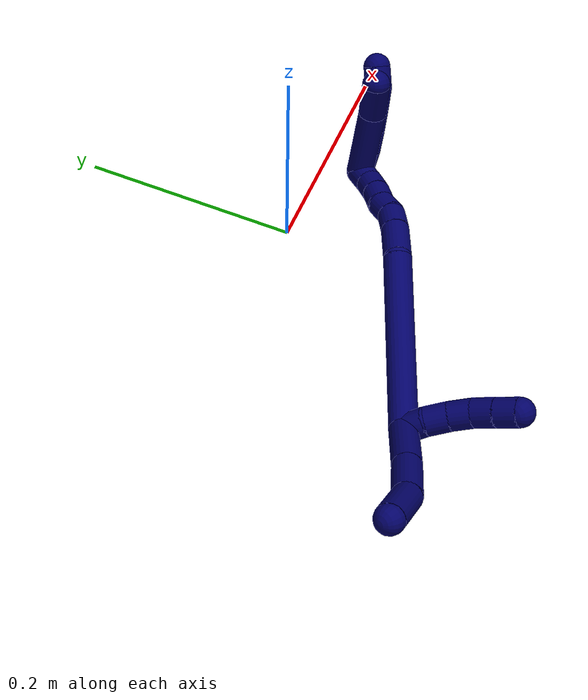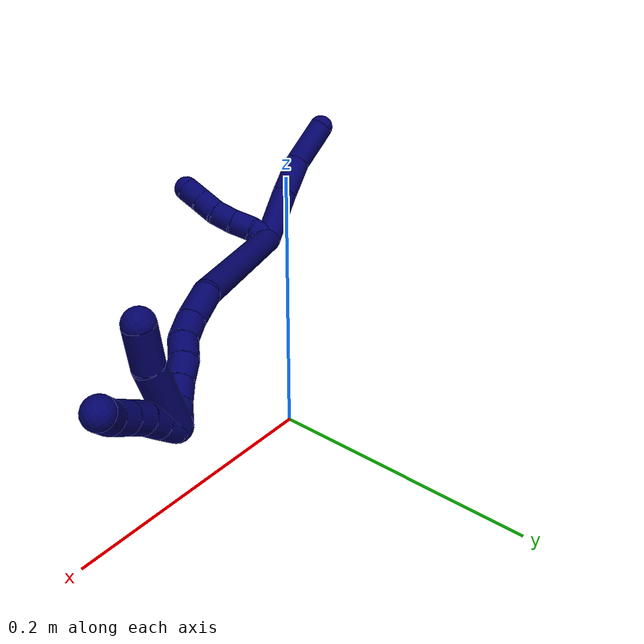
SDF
<sdf version="1.7">
 <world name="default">
  <model name="7">
   <static>0</static>
   <link name="7">
    <collision name="collision-cylinder-e_1_2_8">
     <pose>0.001092 -0.019151 0.021248 0.733532 0.038148 0.014656</pose>
     <geometry><cylinder><radius>0.0125</radius><length>0.057252</length></cylinder></geometry>
     <surface>
      <friction><ode><mu>1.16</mu><mu2>1.16</mu2><slip1>0</slip1><slip2>0</slip2></ode></friction>
      <contact><ode><kp>1e+06</kp><kd>1</kd><max_vel>0</max_vel><min_depth>0.001</min_depth></ode></contact>
     </surface>
    </collision>
    <visual name="visual-cylinder-e_1_2_8">
     <pose>0.001092 -0.019151 0.021248 0.733532 0.038148 0.014656</pose>
     <geometry><cylinder><radius>0.0125</radius><length>0.057252</length></cylinder></geometry>
     <material><ambient>0.003922 0 0.403922 1</ambient></material>
    </visual>
    <collision name="collision-cylinder-e_2_8_9">
     <pose>0.003145 -0.052416 0.059653 0.688415 0.043256 0.015509</pose>
     <geometry><cylinder><radius>0.0125</radius><length>0.044473</length></cylinder></geometry>
     <surface>
      <friction><ode><mu>1.16</mu><mu2>1.16</mu2><slip1>0</slip1><slip2>0</slip2></ode></friction>
      <contact><ode><kp>1e+06</kp><kd>1</kd><max_vel>0</max_vel><min_depth>0.001</min_depth></ode></contact>
     </surface>
    </collision>
    <visual name="visual-cylinder-e_2_8_9">
     <pose>0.003145 -0.052416 0.059653 0.688415 0.043256 0.015509</pose>
     <geometry><cylinder><radius>0.0125</radius><length>0.044473</length></cylinder></geometry>
     <material><ambient>0.003922 0 0.403922 1</ambient></material>
    </visual>
    <collision name="collision-cylinder-e_3_9_6">
     <pose>0.008894 -0.075526 0.09869 0.390055 0.199674 0.03957</pose>
     <geometry><cylinder><radius>0.0125</radius><length>0.048275</length></cylinder></geometry>
     <surface>
      <friction><ode><mu>1.16</mu><mu2>1.16</mu2><slip1>0</slip1><slip2>0</slip2></ode></friction>
      <contact><ode><kp>1e+06</kp><kd>1</kd><max_vel>0</max_vel><min_depth>0.001</min_depth></ode></contact>
     </surface>
    </collision>
    <visual name="visual-cylinder-e_3_9_6">
     <pose>0.008894 -0.075526 0.09869 0.390055 0.199674 0.03957</pose>
     <geometry><cylinder><radius>0.0125</radius><length>0.048275</length></cylinder></geometry>
     <material><ambient>0.003922 0 0.403922 1</ambient></material>
    </visual>
    <collision name="collision-cylinder-e_1_2_10">
     <pose>0.005407 -0.007226 -0.004307 2.10836 0.571295 0.954262</pose>
     <geometry><cylinder><radius>0.0125</radius><length>0.02</length></cylinder></geometry>
     <surface>
      <friction><ode><mu>1.16</mu><mu2>1.16</mu2><slip1>0</slip1><slip2>0</slip2></ode></friction>
      <contact><ode><kp>1e+06</kp><kd>1</kd><max_vel>0</max_vel><min_depth>0.001</min_depth></ode></contact>
     </surface>
    </collision>
    <visual name="visual-cylinder-e_1_2_10">
     <pose>0.005407 -0.007226 -0.004307 2.10836 0.571295 0.954262</pose>
     <geometry><cylinder><radius>0.0125</radius><length>0.02</length></cylinder></geometry>
     <material><ambient>0.003922 0 0.403922 1</ambient></material>
    </visual>
    <collision name="collision-cylinder-e_2_10_11">
     <pose>0.014604 -0.021692 -0.014378 2.2431 0.388665 0.775151</pose>
     <geometry><cylinder><radius>0.0125</radius><length>0.02</length></cylinder></geometry>
     <surface>
      <friction><ode><mu>1.16</mu><mu2>1.16</mu2><slip1>0</slip1><slip2>0</slip2></ode></friction>
      <contact><ode><kp>1e+06</kp><kd>1</kd><max_vel>0</max_vel><min_depth>0.001</min_depth></ode></contact>
     </surface>
    </collision>
    <visual name="visual-cylinder-e_2_10_11">
     <pose>0.014604 -0.021692 -0.014378 2.2431 0.388665 0.775151</pose>
     <geometry><cylinder><radius>0.0125</radius><length>0.02</length></cylinder></geometry>
     <material><ambient>0.003922 0 0.403922 1</ambient></material>
    </visual>
    <collision name="collision-cylinder-e_3_11_12">
     <pose>0.022109 -0.036965 -0.024796 2.09592 0.380633 0.64518</pose>
     <geometry><cylinder><radius>0.0125</radius><length>0.02</length></cylinder></geometry>
     <surface>
      <friction><ode><mu>1.16</mu><mu2>1.16</mu2><slip1>0</slip1><slip2>0</slip2></ode></friction>
      <contact><ode><kp>1e+06</kp><kd>1</kd><max_vel>0</max_vel><min_depth>0.001</min_depth></ode></contact>
     </surface>
    </collision>
    <visual name="visual-cylinder-e_3_11_12">
     <pose>0.022109 -0.036965 -0.024796 2.09592 0.380633 0.64518</pose>
     <geometry><cylinder><radius>0.0125</radius><length>0.02</length></cylinder></geometry>
     <material><ambient>0.003922 0 0.403922 1</ambient></material>
    </visual>
    <collision name="collision-cylinder-e_4_12_13">
     <pose>0.029396 -0.053956 -0.032095 1.85789 0.365294 0.484538</pose>
     <geometry><cylinder><radius>0.0125</radius><length>0.02</length></cylinder></geometry>
     <surface>
      <friction><ode><mu>1.16</mu><mu2>1.16</mu2><slip1>0</slip1><slip2>0</slip2></ode></friction>
      <contact><ode><kp>1e+06</kp><kd>1</kd><max_vel>0</max_vel><min_depth>0.001</min_depth></ode></contact>
     </surface>
    </collision>
    <visual name="visual-cylinder-e_4_12_13">
     <pose>0.029396 -0.053956 -0.032095 1.85789 0.365294 0.484538</pose>
     <geometry><cylinder><radius>0.0125</radius><length>0.02</length></cylinder></geometry>
     <material><ambient>0.003922 0 0.403922 1</ambient></material>
    </visual>
    <collision name="collision-cylinder-e_5_13_5">
     <pose>0.036395 -0.071913 -0.03744 1.86227 0.349807 0.466372</pose>
     <geometry><cylinder><radius>0.0125</radius><length>0.02</length></cylinder></geometry>
     <surface>
      <friction><ode><mu>1.16</mu><mu2>1.16</mu2><slip1>0</slip1><slip2>0</slip2></ode></friction>
      <contact><ode><kp>1e+06</kp><kd>1</kd><max_vel>0</max_vel><min_depth>0.001</min_depth></ode></contact>
     </surface>
    </collision>
    <visual name="visual-cylinder-e_5_13_5">
     <pose>0.036395 -0.071913 -0.03744 1.86227 0.349807 0.466372</pose>
     <geometry><cylinder><radius>0.0125</radius><length>0.02</length></cylinder></geometry>
     <material><ambient>0.003922 0 0.403922 1</ambient></material>
    </visual>
    <collision name="collision-cylinder-e_1_2_14">
     <pose>0.046096 0.047539 -0.044796 -2.3265 0.614536 -1.26768</pose>
     <geometry><cylinder><radius>0.0125</radius><length>0.159893</length></cylinder></geometry>
     <surface>
      <friction><ode><mu>1.16</mu><mu2>1.16</mu2><slip1>0</slip1><slip2>0</slip2></ode></friction>
      <contact><ode><kp>1e+06</kp><kd>1</kd><max_vel>0</max_vel><min_depth>0.001</min_depth></ode></contact>
     </surface>
    </collision>
    <visual name="visual-cylinder-e_1_2_14">
     <pose>0.046096 0.047539 -0.044796 -2.3265 0.614536 -1.26768</pose>
     <geometry><cylinder><radius>0.0125</radius><length>0.159893</length></cylinder></geometry>
     <material><ambient>0.003922 0 0.403922 1</ambient></material>
    </visual>
    <collision name="collision-cylinder-e_2_14_15">
     <pose>0.09744 0.107338 -0.101651 -2.34797 0.296254 -0.684197</pose>
     <geometry><cylinder><radius>0.0125</radius><length>0.03596</length></cylinder></geometry>
     <surface>
      <friction><ode><mu>1.16</mu><mu2>1.16</mu2><slip1>0</slip1><slip2>0</slip2></ode></friction>
      <contact><ode><kp>1e+06</kp><kd>1</kd><max_vel>0</max_vel><min_depth>0.001</min_depth></ode></contact>
     </surface>
    </collision>
    <visual name="visual-cylinder-e_2_14_15">
     <pose>0.09744 0.107338 -0.101651 -2.34797 0.296254 -0.684197</pose>
     <geometry><cylinder><radius>0.0125</radius><length>0.03596</length></cylinder></geometry>
     <material><ambient>0.003922 0 0.403922 1</ambient></material>
    </visual>
    <collision name="collision-cylinder-e_3_15_16">
     <pose>0.105254 0.128055 -0.120652 -2.25801 0.230263 -0.479597</pose>
     <geometry><cylinder><radius>0.0125</radius><length>0.022478</length></cylinder></geometry>
     <surface>
      <friction><ode><mu>1.16</mu><mu2>1.16</mu2><slip1>0</slip1><slip2>0</slip2></ode></friction>
      <contact><ode><kp>1e+06</kp><kd>1</kd><max_vel>0</max_vel><min_depth>0.001</min_depth></ode></contact>
     </surface>
    </collision>
    <visual name="visual-cylinder-e_3_15_16">
     <pose>0.105254 0.128055 -0.120652 -2.25801 0.230263 -0.479597</pose>
     <geometry><cylinder><radius>0.0125</radius><length>0.022478</length></cylinder></geometry>
     <material><ambient>0.003922 0 0.403922 1</ambient></material>
    </visual>
    <collision name="collision-cylinder-e_4_16_17">
     <pose>0.108485 0.145815 -0.131555 -1.97339 0.065738 -0.0994</pose>
     <geometry><cylinder><radius>0.0125</radius><length>0.020263</length></cylinder></geometry>
     <surface>
      <friction><ode><mu>1.16</mu><mu2>1.16</mu2><slip1>0</slip1><slip2>0</slip2></ode></friction>
      <contact><ode><kp>1e+06</kp><kd>1</kd><max_vel>0</max_vel><min_depth>0.001</min_depth></ode></contact>
     </surface>
    </collision>
    <visual name="visual-cylinder-e_4_16_17">
     <pose>0.108485 0.145815 -0.131555 -1.97339 0.065738 -0.0994</pose>
     <geometry><cylinder><radius>0.0125</radius><length>0.020263</length></cylinder></geometry>
     <material><ambient>0.003922 0 0.403922 1</ambient></material>
    </visual>
    <collision name="collision-cylinder-e_5_17_18">
     <pose>0.110291 0.163428 -0.141533 -2.19738 0.110742 -0.216252</pose>
     <geometry><cylinder><radius>0.0125</radius><length>0.020648</length></cylinder></geometry>
     <surface>
      <friction><ode><mu>1.16</mu><mu2>1.16</mu2><slip1>0</slip1><slip2>0</slip2></ode></friction>
      <contact><ode><kp>1e+06</kp><kd>1</kd><max_vel>0</max_vel><min_depth>0.001</min_depth></ode></contact>
     </surface>
    </collision>
    <visual name="visual-cylinder-e_5_17_18">
     <pose>0.110291 0.163428 -0.141533 -2.19738 0.110742 -0.216252</pose>
     <geometry><cylinder><radius>0.0125</radius><length>0.020648</length></cylinder></geometry>
     <material><ambient>0.003922 0 0.403922 1</ambient></material>
    </visual>
    <collision name="collision-cylinder-e_6_18_19">
     <pose>0.111965 0.18043 -0.152756 -2.11055 0.05258 -0.092748</pose>
     <geometry><cylinder><radius>0.0125</radius><length>0.020289</length></cylinder></geometry>
     <surface>
      <friction><ode><mu>1.16</mu><mu2>1.16</mu2><slip1>0</slip1><slip2>0</slip2></ode></friction>
      <contact><ode><kp>1e+06</kp><kd>1</kd><max_vel>0</max_vel><min_depth>0.001</min_depth></ode></contact>
     </surface>
    </collision>
    <visual name="visual-cylinder-e_6_18_19">
     <pose>0.111965 0.18043 -0.152756 -2.11055 0.05258 -0.092748</pose>
     <geometry><cylinder><radius>0.0125</radius><length>0.020289</length></cylinder></geometry>
     <material><ambient>0.003922 0 0.403922 1</ambient></material>
    </visual>
    <collision name="collision-cylinder-e_7_19_1">
     <pose>0.114013 0.198519 -0.161721 -1.95124 0.148536 -0.218905</pose>
     <geometry><cylinder><radius>0.0125</radius><length>0.02047</length></cylinder></geometry>
     <surface>
      <friction><ode><mu>1.16</mu><mu2>1.16</mu2><slip1>0</slip1><slip2>0</slip2></ode></friction>
      <contact><ode><kp>1e+06</kp><kd>1</kd><max_vel>0</max_vel><min_depth>0.001</min_depth></ode></contact>
     </surface>
    </collision>
    <visual name="visual-cylinder-e_7_19_1">
     <pose>0.114013 0.198519 -0.161721 -1.95124 0.148536 -0.218905</pose>
     <geometry><cylinder><radius>0.0125</radius><length>0.02047</length></cylinder></geometry>
     <material><ambient>0.003922 0 0.403922 1</ambient></material>
    </visual>
    <collision name="collision-cylinder-e_1_1_20">
     <pose>0.124673 0.208493 -0.169485 -2.99878 1.15416 -2.92272</pose>
     <geometry><cylinder><radius>0.0125</radius><length>0.02</length></cylinder></geometry>
     <surface>
      <friction><ode><mu>1.16</mu><mu2>1.16</mu2><slip1>0</slip1><slip2>0</slip2></ode></friction>
      <contact><ode><kp>1e+06</kp><kd>1</kd><max_vel>0</max_vel><min_depth>0.001</min_depth></ode></contact>
     </surface>
    </collision>
    <visual name="visual-cylinder-e_1_1_20">
     <pose>0.124673 0.208493 -0.169485 -2.99878 1.15416 -2.92272</pose>
     <geometry><cylinder><radius>0.0125</radius><length>0.02</length></cylinder></geometry>
     <material><ambient>0.003922 0 0.403922 1</ambient></material>
    </visual>
    <collision name="collision-cylinder-e_2_20_21">
     <pose>0.143195 0.210363 -0.176713 -2.75987 1.21612 -2.60005</pose>
     <geometry><cylinder><radius>0.0125</radius><length>0.02</length></cylinder></geometry>
     <surface>
      <friction><ode><mu>1.16</mu><mu2>1.16</mu2><slip1>0</slip1><slip2>0</slip2></ode></friction>
      <contact><ode><kp>1e+06</kp><kd>1</kd><max_vel>0</max_vel><min_depth>0.001</min_depth></ode></contact>
     </surface>
    </collision>
    <visual name="visual-cylinder-e_2_20_21">
     <pose>0.143195 0.210363 -0.176713 -2.75987 1.21612 -2.60005</pose>
     <geometry><cylinder><radius>0.0125</radius><length>0.02</length></cylinder></geometry>
     <material><ambient>0.003922 0 0.403922 1</ambient></material>
    </visual>
    <collision name="collision-cylinder-e_3_21_22">
     <pose>0.161369 0.214103 -0.184015 -2.60126 1.07509 -2.27177</pose>
     <geometry><cylinder><radius>0.0125</radius><length>0.02</length></cylinder></geometry>
     <surface>
      <friction><ode><mu>1.16</mu><mu2>1.16</mu2><slip1>0</slip1><slip2>0</slip2></ode></friction>
      <contact><ode><kp>1e+06</kp><kd>1</kd><max_vel>0</max_vel><min_depth>0.001</min_depth></ode></contact>
     </surface>
    </collision>
    <visual name="visual-cylinder-e_3_21_22">
     <pose>0.161369 0.214103 -0.184015 -2.60126 1.07509 -2.27177</pose>
     <geometry><cylinder><radius>0.0125</radius><length>0.02</length></cylinder></geometry>
     <material><ambient>0.003922 0 0.403922 1</ambient></material>
    </visual>
    <collision name="collision-cylinder-e_4_22_23">
     <pose>0.179003 0.219102 -0.192017 -2.56492 1.08385 -2.22609</pose>
     <geometry><cylinder><radius>0.0125</radius><length>0.02</length></cylinder></geometry>
     <surface>
      <friction><ode><mu>1.16</mu><mu2>1.16</mu2><slip1>0</slip1><slip2>0</slip2></ode></friction>
      <contact><ode><kp>1e+06</kp><kd>1</kd><max_vel>0</max_vel><min_depth>0.001</min_depth></ode></contact>
     </surface>
    </collision>
    <visual name="visual-cylinder-e_4_22_23">
     <pose>0.179003 0.219102 -0.192017 -2.56492 1.08385 -2.22609</pose>
     <geometry><cylinder><radius>0.0125</radius><length>0.02</length></cylinder></geometry>
     <material><ambient>0.003922 0 0.403922 1</ambient></material>
    </visual>
    <collision name="collision-cylinder-e_5_23_4">
     <pose>0.197221 0.224924 -0.197081 -1.90661 1.21701 -1.5517</pose>
     <geometry><cylinder><radius>0.0125</radius><length>0.02</length></cylinder></geometry>
     <surface>
      <friction><ode><mu>1.16</mu><mu2>1.16</mu2><slip1>0</slip1><slip2>0</slip2></ode></friction>
      <contact><ode><kp>1e+06</kp><kd>1</kd><max_vel>0</max_vel><min_depth>0.001</min_depth></ode></contact>
     </surface>
    </collision>
    <visual name="visual-cylinder-e_5_23_4">
     <pose>0.197221 0.224924 -0.197081 -1.90661 1.21701 -1.5517</pose>
     <geometry><cylinder><radius>0.0125</radius><length>0.02</length></cylinder></geometry>
     <material><ambient>0.003922 0 0.403922 1</ambient></material>
    </visual>
    <collision name="collision-cylinder-e_1_1_24">
     <pose>0.146999 0.201769 -0.161855 1.03811 1.3478 0.85609</pose>
     <geometry><cylinder><radius>0.0125</radius><length>0.06454</length></cylinder></geometry>
     <surface>
      <friction><ode><mu>1.16</mu><mu2>1.16</mu2><slip1>0</slip1><slip2>0</slip2></ode></friction>
      <contact><ode><kp>1e+06</kp><kd>1</kd><max_vel>0</max_vel><min_depth>0.001</min_depth></ode></contact>
     </surface>
    </collision>
    <visual name="visual-cylinder-e_1_1_24">
     <pose>0.146999 0.201769 -0.161855 1.03811 1.3478 0.85609</pose>
     <geometry><cylinder><radius>0.0125</radius><length>0.06454</length></cylinder></geometry>
     <material><ambient>0.003922 0 0.403922 1</ambient></material>
    </visual>
    <collision name="collision-cylinder-e_2_24_3">
     <pose>0.194931 0.191298 -0.153263 0.716168 1.19025 0.496251</pose>
     <geometry><cylinder><radius>0.0125</radius><length>0.03546</length></cylinder></geometry>
     <surface>
      <friction><ode><mu>1.16</mu><mu2>1.16</mu2><slip1>0</slip1><slip2>0</slip2></ode></friction>
      <contact><ode><kp>1e+06</kp><kd>1</kd><max_vel>0</max_vel><min_depth>0.001</min_depth></ode></contact>
     </surface>
    </collision>
    <visual name="visual-cylinder-e_2_24_3">
     <pose>0.194931 0.191298 -0.153263 0.716168 1.19025 0.496251</pose>
     <geometry><cylinder><radius>0.0125</radius><length>0.03546</length></cylinder></geometry>
     <material><ambient>0.003922 0 0.403922 1</ambient></material>
    </visual>
    <collision name="collision-sphere-3">
     <pose>0.211393 0.186975 -0.148295 0 -0 0</pose>
     <geometry><sphere><radius>0.0125</radius></sphere></geometry>
     <surface>
      <friction><ode><mu>1.16</mu><mu2>1.16</mu2><slip1>0</slip1><slip2>0</slip2></ode></friction>
      <contact><ode><kp>1e+06</kp><kd>1</kd><max_vel>0</max_vel><min_depth>0.001</min_depth></ode></contact>
     </surface>
    </collision>
    <visual name="visual-sphere-3">
     <pose>0.211393 0.186975 -0.148295 0 -0 0</pose>
     <geometry><sphere><radius>0.0125</radius></sphere></geometry>
     <material><ambient>0.003922 0 0.403922 1</ambient></material>
    </visual>
    <collision name="collision-sphere-24">
     <pose>0.17847 0.195622 -0.158231 0 -0 0</pose>
     <geometry><sphere><radius>0.0125</radius></sphere></geometry>
     <surface>
      <friction><ode><mu>1.16</mu><mu2>1.16</mu2><slip1>0</slip1><slip2>0</slip2></ode></friction>
      <contact><ode><kp>1e+06</kp><kd>1</kd><max_vel>0</max_vel><min_depth>0.001</min_depth></ode></contact>
     </surface>
    </collision>
    <visual name="visual-sphere-24">
     <pose>0.17847 0.195622 -0.158231 0 -0 0</pose>
     <geometry><sphere><radius>0.0125</radius></sphere></geometry>
     <material><ambient>0.003922 0 0.403922 1</ambient></material>
    </visual>
    <collision name="collision-sphere-4">
     <pose>0.206602 0.228195 -0.198223 0 -0 0</pose>
     <geometry><sphere><radius>0.0125</radius></sphere></geometry>
     <surface>
      <friction><ode><mu>1.16</mu><mu2>1.16</mu2><slip1>0</slip1><slip2>0</slip2></ode></friction>
      <contact><ode><kp>1e+06</kp><kd>1</kd><max_vel>0</max_vel><min_depth>0.001</min_depth></ode></contact>
     </surface>
    </collision>
    <visual name="visual-sphere-4">
     <pose>0.206602 0.228195 -0.198223 0 -0 0</pose>
     <geometry><sphere><radius>0.0125</radius></sphere></geometry>
     <material><ambient>0.003922 0 0.403922 1</ambient></material>
    </visual>
    <collision name="collision-sphere-23">
     <pose>0.18784 0.221653 -0.195939 0 -0 0</pose>
     <geometry><sphere><radius>0.0125</radius></sphere></geometry>
     <surface>
      <friction><ode><mu>1.16</mu><mu2>1.16</mu2><slip1>0</slip1><slip2>0</slip2></ode></friction>
      <contact><ode><kp>1e+06</kp><kd>1</kd><max_vel>0</max_vel><min_depth>0.001</min_depth></ode></contact>
     </surface>
    </collision>
    <visual name="visual-sphere-23">
     <pose>0.18784 0.221653 -0.195939 0 -0 0</pose>
     <geometry><sphere><radius>0.0125</radius></sphere></geometry>
     <material><ambient>0.003922 0 0.403922 1</ambient></material>
    </visual>
    <collision name="collision-sphere-22">
     <pose>0.170165 0.21655 -0.188094 0 -0 0</pose>
     <geometry><sphere><radius>0.0125</radius></sphere></geometry>
     <surface>
      <friction><ode><mu>1.16</mu><mu2>1.16</mu2><slip1>0</slip1><slip2>0</slip2></ode></friction>
      <contact><ode><kp>1e+06</kp><kd>1</kd><max_vel>0</max_vel><min_depth>0.001</min_depth></ode></contact>
     </surface>
    </collision>
    <visual name="visual-sphere-22">
     <pose>0.170165 0.21655 -0.188094 0 -0 0</pose>
     <geometry><sphere><radius>0.0125</radius></sphere></geometry>
     <material><ambient>0.003922 0 0.403922 1</ambient></material>
    </visual>
    <collision name="collision-sphere-21">
     <pose>0.152572 0.211657 -0.179936 0 -0 0</pose>
     <geometry><sphere><radius>0.0125</radius></sphere></geometry>
     <surface>
      <friction><ode><mu>1.16</mu><mu2>1.16</mu2><slip1>0</slip1><slip2>0</slip2></ode></friction>
      <contact><ode><kp>1e+06</kp><kd>1</kd><max_vel>0</max_vel><min_depth>0.001</min_depth></ode></contact>
     </surface>
    </collision>
    <visual name="visual-sphere-21">
     <pose>0.152572 0.211657 -0.179936 0 -0 0</pose>
     <geometry><sphere><radius>0.0125</radius></sphere></geometry>
     <material><ambient>0.003922 0 0.403922 1</ambient></material>
    </visual>
    <collision name="collision-sphere-20">
     <pose>0.133817 0.209069 -0.173491 0 -0 0</pose>
     <geometry><sphere><radius>0.0125</radius></sphere></geometry>
     <surface>
      <friction><ode><mu>1.16</mu><mu2>1.16</mu2><slip1>0</slip1><slip2>0</slip2></ode></friction>
      <contact><ode><kp>1e+06</kp><kd>1</kd><max_vel>0</max_vel><min_depth>0.001</min_depth></ode></contact>
     </surface>
    </collision>
    <visual name="visual-sphere-20">
     <pose>0.133817 0.209069 -0.173491 0 -0 0</pose>
     <geometry><sphere><radius>0.0125</radius></sphere></geometry>
     <material><ambient>0.003922 0 0.403922 1</ambient></material>
    </visual>
    <collision name="collision-sphere-11">
     <pose>0.018394 -0.028932 -0.020141 0 -0 0</pose>
     <geometry><sphere><radius>0.0125</radius></sphere></geometry>
     <surface>
      <friction><ode><mu>1.16</mu><mu2>1.16</mu2><slip1>0</slip1><slip2>0</slip2></ode></friction>
      <contact><ode><kp>1e+06</kp><kd>1</kd><max_vel>0</max_vel><min_depth>0.001</min_depth></ode></contact>
     </surface>
    </collision>
    <visual name="visual-sphere-11">
     <pose>0.018394 -0.028932 -0.020141 0 -0 0</pose>
     <geometry><sphere><radius>0.0125</radius></sphere></geometry>
     <material><ambient>0.003922 0 0.403922 1</ambient></material>
    </visual>
    <collision name="collision-sphere-10">
     <pose>0.010814 -0.014451 -0.008615 0 -0 0</pose>
     <geometry><sphere><radius>0.0125</radius></sphere></geometry>
     <surface>
      <friction><ode><mu>1.16</mu><mu2>1.16</mu2><slip1>0</slip1><slip2>0</slip2></ode></friction>
      <contact><ode><kp>1e+06</kp><kd>1</kd><max_vel>0</max_vel><min_depth>0.001</min_depth></ode></contact>
     </surface>
    </collision>
    <visual name="visual-sphere-10">
     <pose>0.010814 -0.014451 -0.008615 0 -0 0</pose>
     <geometry><sphere><radius>0.0125</radius></sphere></geometry>
     <material><ambient>0.003922 0 0.403922 1</ambient></material>
    </visual>
    <collision name="collision-sphere-6">
     <pose>0.013682 -0.084521 0.120571 0 -0 0</pose>
     <geometry><sphere><radius>0.0125</radius></sphere></geometry>
     <surface>
      <friction><ode><mu>1.16</mu><mu2>1.16</mu2><slip1>0</slip1><slip2>0</slip2></ode></friction>
      <contact><ode><kp>1e+06</kp><kd>1</kd><max_vel>0</max_vel><min_depth>0.001</min_depth></ode></contact>
     </surface>
    </collision>
    <visual name="visual-sphere-6">
     <pose>0.013682 -0.084521 0.120571 0 -0 0</pose>
     <geometry><sphere><radius>0.0125</radius></sphere></geometry>
     <material><ambient>0.003922 0 0.403922 1</ambient></material>
    </visual>
    <collision name="collision-sphere-9">
     <pose>0.004107 -0.06653 0.076809 0 -0 0</pose>
     <geometry><sphere><radius>0.0125</radius></sphere></geometry>
     <surface>
      <friction><ode><mu>1.16</mu><mu2>1.16</mu2><slip1>0</slip1><slip2>0</slip2></ode></friction>
      <contact><ode><kp>1e+06</kp><kd>1</kd><max_vel>0</max_vel><min_depth>0.001</min_depth></ode></contact>
     </surface>
    </collision>
    <visual name="visual-sphere-9">
     <pose>0.004107 -0.06653 0.076809 0 -0 0</pose>
     <geometry><sphere><radius>0.0125</radius></sphere></geometry>
     <material><ambient>0.003922 0 0.403922 1</ambient></material>
    </visual>
    <collision name="collision-sphere-2">
     <geometry><sphere><radius>0.0125</radius></sphere></geometry>
     <surface>
      <friction><ode><mu>1.16</mu><mu2>1.16</mu2><slip1>0</slip1><slip2>0</slip2></ode></friction>
      <contact><ode><kp>1e+06</kp><kd>1</kd><max_vel>0</max_vel><min_depth>0.001</min_depth></ode></contact>
     </surface>
    </collision>
    <visual name="visual-sphere-2">
     <geometry><sphere><radius>0.0125</radius></sphere></geometry>
     <material><ambient>0.003922 0 0.403922 1</ambient></material>
    </visual>
    <collision name="collision-sphere-19">
     <pose>0.112499 0.18912 -0.157962 0 -0 0</pose>
     <geometry><sphere><radius>0.0125</radius></sphere></geometry>
     <surface>
      <friction><ode><mu>1.16</mu><mu2>1.16</mu2><slip1>0</slip1><slip2>0</slip2></ode></friction>
      <contact><ode><kp>1e+06</kp><kd>1</kd><max_vel>0</max_vel><min_depth>0.001</min_depth></ode></contact>
     </surface>
    </collision>
    <visual name="visual-sphere-19">
     <pose>0.112499 0.18912 -0.157962 0 -0 0</pose>
     <geometry><sphere><radius>0.0125</radius></sphere></geometry>
     <material><ambient>0.003922 0 0.403922 1</ambient></material>
    </visual>
    <collision name="collision-sphere-8">
     <pose>0.002184 -0.038302 0.042497 0 -0 0</pose>
     <geometry><sphere><radius>0.0125</radius></sphere></geometry>
     <surface>
      <friction><ode><mu>1.16</mu><mu2>1.16</mu2><slip1>0</slip1><slip2>0</slip2></ode></friction>
      <contact><ode><kp>1e+06</kp><kd>1</kd><max_vel>0</max_vel><min_depth>0.001</min_depth></ode></contact>
     </surface>
    </collision>
    <visual name="visual-sphere-8">
     <pose>0.002184 -0.038302 0.042497 0 -0 0</pose>
     <geometry><sphere><radius>0.0125</radius></sphere></geometry>
     <material><ambient>0.003922 0 0.403922 1</ambient></material>
    </visual>
    <collision name="collision-sphere-12">
     <pose>0.025824 -0.044999 -0.02945 0 -0 0</pose>
     <geometry><sphere><radius>0.0125</radius></sphere></geometry>
     <surface>
      <friction><ode><mu>1.16</mu><mu2>1.16</mu2><slip1>0</slip1><slip2>0</slip2></ode></friction>
      <contact><ode><kp>1e+06</kp><kd>1</kd><max_vel>0</max_vel><min_depth>0.001</min_depth></ode></contact>
     </surface>
    </collision>
    <visual name="visual-sphere-12">
     <pose>0.025824 -0.044999 -0.02945 0 -0 0</pose>
     <geometry><sphere><radius>0.0125</radius></sphere></geometry>
     <material><ambient>0.003922 0 0.403922 1</ambient></material>
    </visual>
    <collision name="collision-sphere-13">
     <pose>0.032968 -0.062914 -0.03474 0 -0 0</pose>
     <geometry><sphere><radius>0.0125</radius></sphere></geometry>
     <surface>
      <friction><ode><mu>1.16</mu><mu2>1.16</mu2><slip1>0</slip1><slip2>0</slip2></ode></friction>
      <contact><ode><kp>1e+06</kp><kd>1</kd><max_vel>0</max_vel><min_depth>0.001</min_depth></ode></contact>
     </surface>
    </collision>
    <visual name="visual-sphere-13">
     <pose>0.032968 -0.062914 -0.03474 0 -0 0</pose>
     <geometry><sphere><radius>0.0125</radius></sphere></geometry>
     <material><ambient>0.003922 0 0.403922 1</ambient></material>
    </visual>
    <collision name="collision-sphere-5">
     <pose>0.039822 -0.080911 -0.040139 0 -0 0</pose>
     <geometry><sphere><radius>0.0125</radius></sphere></geometry>
     <surface>
      <friction><ode><mu>1.16</mu><mu2>1.16</mu2><slip1>0</slip1><slip2>0</slip2></ode></friction>
      <contact><ode><kp>1e+06</kp><kd>1</kd><max_vel>0</max_vel><min_depth>0.001</min_depth></ode></contact>
     </surface>
    </collision>
    <visual name="visual-sphere-5">
     <pose>0.039822 -0.080911 -0.040139 0 -0 0</pose>
     <geometry><sphere><radius>0.0125</radius></sphere></geometry>
     <material><ambient>0.003922 0 0.403922 1</ambient></material>
    </visual>
    <collision name="collision-sphere-14">
     <pose>0.092191 0.095078 -0.089592 0 -0 0</pose>
     <geometry><sphere><radius>0.0125</radius></sphere></geometry>
     <surface>
      <friction><ode><mu>1.16</mu><mu2>1.16</mu2><slip1>0</slip1><slip2>0</slip2></ode></friction>
      <contact><ode><kp>1e+06</kp><kd>1</kd><max_vel>0</max_vel><min_depth>0.001</min_depth></ode></contact>
     </surface>
    </collision>
    <visual name="visual-sphere-14">
     <pose>0.092191 0.095078 -0.089592 0 -0 0</pose>
     <geometry><sphere><radius>0.0125</radius></sphere></geometry>
     <material><ambient>0.003922 0 0.403922 1</ambient></material>
    </visual>
    <collision name="collision-sphere-15">
     <pose>0.102689 0.119597 -0.113711 0 -0 0</pose>
     <geometry><sphere><radius>0.0125</radius></sphere></geometry>
     <surface>
      <friction><ode><mu>1.16</mu><mu2>1.16</mu2><slip1>0</slip1><slip2>0</slip2></ode></friction>
      <contact><ode><kp>1e+06</kp><kd>1</kd><max_vel>0</max_vel><min_depth>0.001</min_depth></ode></contact>
     </surface>
    </collision>
    <visual name="visual-sphere-15">
     <pose>0.102689 0.119597 -0.113711 0 -0 0</pose>
     <geometry><sphere><radius>0.0125</radius></sphere></geometry>
     <material><ambient>0.003922 0 0.403922 1</ambient></material>
    </visual>
    <collision name="collision-sphere-16">
     <pose>0.107819 0.136514 -0.127594 0 -0 0</pose>
     <geometry><sphere><radius>0.0125</radius></sphere></geometry>
     <surface>
      <friction><ode><mu>1.16</mu><mu2>1.16</mu2><slip1>0</slip1><slip2>0</slip2></ode></friction>
      <contact><ode><kp>1e+06</kp><kd>1</kd><max_vel>0</max_vel><min_depth>0.001</min_depth></ode></contact>
     </surface>
    </collision>
    <visual name="visual-sphere-16">
     <pose>0.107819 0.136514 -0.127594 0 -0 0</pose>
     <geometry><sphere><radius>0.0125</radius></sphere></geometry>
     <material><ambient>0.003922 0 0.403922 1</ambient></material>
    </visual>
    <collision name="collision-sphere-17">
     <pose>0.10915 0.155116 -0.135516 0 -0 0</pose>
     <geometry><sphere><radius>0.0125</radius></sphere></geometry>
     <surface>
      <friction><ode><mu>1.16</mu><mu2>1.16</mu2><slip1>0</slip1><slip2>0</slip2></ode></friction>
      <contact><ode><kp>1e+06</kp><kd>1</kd><max_vel>0</max_vel><min_depth>0.001</min_depth></ode></contact>
     </surface>
    </collision>
    <visual name="visual-sphere-17">
     <pose>0.10915 0.155116 -0.135516 0 -0 0</pose>
     <geometry><sphere><radius>0.0125</radius></sphere></geometry>
     <material><ambient>0.003922 0 0.403922 1</ambient></material>
    </visual>
    <collision name="collision-sphere-18">
     <pose>0.111432 0.17174 -0.147549 0 -0 0</pose>
     <geometry><sphere><radius>0.0125</radius></sphere></geometry>
     <surface>
      <friction><ode><mu>1.16</mu><mu2>1.16</mu2><slip1>0</slip1><slip2>0</slip2></ode></friction>
      <contact><ode><kp>1e+06</kp><kd>1</kd><max_vel>0</max_vel><min_depth>0.001</min_depth></ode></contact>
     </surface>
    </collision>
    <visual name="visual-sphere-18">
     <pose>0.111432 0.17174 -0.147549 0 -0 0</pose>
     <geometry><sphere><radius>0.0125</radius></sphere></geometry>
     <material><ambient>0.003922 0 0.403922 1</ambient></material>
    </visual>
    <collision name="collision-sphere-1">
     <pose>0.115528 0.207917 -0.165479 0 -0 0</pose>
     <geometry><sphere><radius>0.0125</radius></sphere></geometry>
     <surface>
      <friction><ode><mu>1.16</mu><mu2>1.16</mu2><slip1>0</slip1><slip2>0</slip2></ode></friction>
      <contact><ode><kp>1e+06</kp><kd>1</kd><max_vel>0</max_vel><min_depth>0.001</min_depth></ode></contact>
     </surface>
    </collision>
    <visual name="visual-sphere-1">
     <pose>0.115528 0.207917 -0.165479 0 -0 0</pose>
     <geometry><sphere><radius>0.0125</radius></sphere></geometry>
     <material><ambient>0.003922 0 0.403922 1</ambient></material>
    </visual>
    <inertial>
     <pose>0.076826 0.078439 -0.071228 0 -0 0</pose>
     <mass>0.75</mass>
     <inertia>
      <ixx>-9.7e-05</ixx>
      <ixy>0</ixy>
      <ixz>0</ixz>
      <iyy>-0.000136</iyy>
      <iyz>0</iyz>
      <izz>-0.000436</izz>
     </inertia>
    </inertial>
   </link>
   <pose>-0.174469 -0.177435 0.040007 -0.617478 -1.076 0.23734</pose>
  </model>
 </world>
</sdf>
